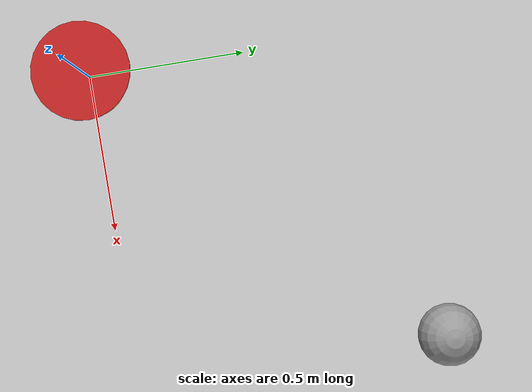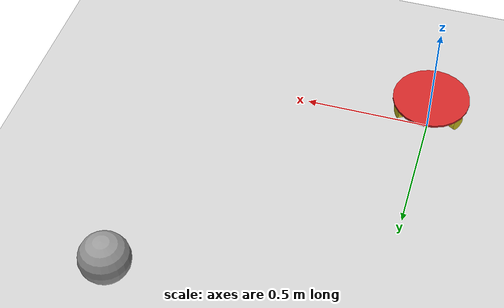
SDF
<?xml version="1.0" ?>
<sdf version="1.6">
  <world name="default">
    <plugin name="simulation_plugin" filename="libsimulation_plugin.so"/>
    <physics type='ode'>
      <max_step_size>0.001</max_step_size>
      <!-- Default is 0.001 , can go up to increase the simulation real time update rate  -->
      <real_time_factor>1.000000</real_time_factor>
      <real_time_update_rate>1000.000000</real_time_update_rate>
      <!-- Default is 1000 , can go up to increase the simulation real time update rate  -->
    </physics>
    <include>
      <uri>model://ground_plane</uri>
    </include>
    <include>
      <uri>model://sun</uri>
    </include>
    <include>
      <uri>model://omniROS</uri>
      <plugin name="torque_plugin" filename="libtorque_plugin.so"/>

      <pose> 0 0 0.10 0 0 3.1415 </pose>
    </include>
    <include>
      <uri>model://ball</uri>
      <!-- Useless because of modelstate message in gazebo-->
      <pose> 1 1 0.05 0 0 0 </pose>
    </include>
    <light name='sun' type='directional'>
      <cast_shadows>1</cast_shadows>
      <pose frame=''>0 0 10 0 -0 0</pose>
      <diffuse>0.8 0.8 0.8 1</diffuse>
      <specular>0.2 0.2 0.2 1</specular>
      <attenuation>
        <range>1000</range>
        <constant>0.9</constant>
        <linear>0.01</linear>
        <quadratic>0.001</quadratic>
      </attenuation>
      <direction>-0.5 0.1 -0.9</direction>
    </light>
    <scene>
      <ambient>1.0 1.0 1.0 1</ambient>
      <background>0.7 0.7 0.7 1</background>
      <shadows>1</shadows>
    </scene>
  </world>
</sdf>

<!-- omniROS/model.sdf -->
<sdf version='1.6'>
  <model name='omniROS'>
    <plugin name="holonomic_model_plugin" filename="libholonomic_model_plugin.so">
        <pid_p>0.1</pid_p>
        <pid_i>0.000</pid_i>
        <pid_d>0.0</pid_d>
        <pid_output_max>1.76</pid_output_max>
        <PIDfrequency>60</PIDfrequency>
    </plugin>

    <link name='base_link'>
      <pose frame=''>0 -0 0.0645 0 -0 0</pose>
      <inertial>
        <mass>2.7</mass>
        <inertia>
          <ixx>0.00011205</ixx>
          <ixy>0</ixy>
          <ixz>0</ixz>
          <iyy>0.00011205</iyy>
          <iyz>0</iyz>
          <izz>0.00022396</izz>
        </inertia>
        <pose frame=''>0 0 0 0 -0 0</pose>
      </inertial>
      <self_collide>0</self_collide>
      <kinematic>0</kinematic>
      <gravity>1</gravity>
      <visual name='visual'>
        <pose frame=''>0 0 0 0 -0 0</pose>
        <geometry>
          <cylinder>
            <radius>0.1525</radius>
            <length>0.009</length>
          </cylinder>
        </geometry>
        <material>
          <lighting>1</lighting>
          <script>
            <uri>file://media/materials/scripts/gazebo.material</uri>
            <name>Gazebo/Red</name>
          </script>
          <ambient>1.0 0.0 0.0 1</ambient>
          <diffuse>1.0 0.0 0.0 1</diffuse>
          <specular>0.01 0.01 0.01 1</specular>
          <emissive>0 0 0 1</emissive>
          <shader type='vertex'>
            <normal_map>__default__</normal_map>
          </shader>
        </material>
        <cast_shadows>1</cast_shadows>
        <transparency>0</transparency>
      </visual>
      <collision name='base_link_collision'>
        <max_contacts>10</max_contacts>
        <pose frame=''>0 0 0 0 -0 0</pose>
        <geometry>
          <cylinder>
            <radius>0.1525</radius>
            <length>0.009</length>
          </cylinder>
        </geometry>
      </collision>
      <sensor name="lidar" type="ray">
        <pose>0 0 0.033 0 -0 0</pose>
        <ray>
          <scan>
            <horizontal>
              <samples>360</samples>
              <resolution>1</resolution>
              <min_angle>0.0</min_angle>
              <max_angle>6.2831</max_angle>
            </horizontal>
          </scan>
          <range>
            <min>0.12</min>
            <max>10</max>
            <resolution>0.01</resolution>
          </range>
          <noise>
            <type>gaussian</type>
            <mean>0.0</mean>
            <stddev>0.05</stddev>
          </noise>
        </ray>
        <plugin name="laser" filename="libgazebo_ros_laser.so">
          <topicName>/omniROS/lidarScan</topicName>
          <frameName>hokuyo_link</frameName>
        </plugin>
        <always_on>1</always_on>
        <update_rate>7</update_rate>
        <visualize>false</visualize>
      </sensor>
    </link>
    <link name='Wheel1'>
      <pose frame=''>-0 0.13 0.029 1.5708 -0 0</pose>
      <inertial>
        <mass>0.065</mass>
        <inertia>
          <ixx>1.33e-06</ixx>
          <ixy>0</ixy>
          <ixz>0</ixz>
          <iyy>1.33e-06</iyy>
          <iyz>0</iyz>
          <izz>0.000027</izz>
        </inertia>
        <pose frame=''>0 0 0 0 -0 0</pose>
      </inertial>
      <self_collide>0</self_collide>
      <kinematic>0</kinematic>
      <gravity>1</gravity>
      <visual name='visual'>
        <pose frame=''>0 0 0 0 -0 0</pose>
        <geometry>
          <cylinder>
            <radius>0.029</radius>
            <length>0.026</length>
          </cylinder>
        </geometry>
        <material>
          <lighting>1</lighting>
          <script>
            <uri>file://media/materials/scripts/gazebo.material</uri>
            <name>Gazebo/Yellow</name>
          </script>
          <ambient>0.5 0.5 0.0 1</ambient>
          <diffuse>0.7 0.7 0.7 1</diffuse>
          <specular>0.01 0.01 0.01 1</specular>
          <emissive>0 0 0 1</emissive>
          <shader type='vertex'>
            <normal_map>__default__</normal_map>
          </shader>
        </material>
        <cast_shadows>1</cast_shadows>
        <transparency>0</transparency>
      </visual>
      <collision name='collision'>
        <max_contacts>1</max_contacts>
        <pose frame=''>0 0 0 0 -0 0</pose>
        <geometry>
          <cylinder>
            <radius>0.029</radius>
            <length>0.026</length>
          </cylinder>
        </geometry>
        <surface>
          <friction>
            <torsional>
              <coefficient>0.0</coefficient>
            </torsional>
            <ode>
              <fdir1>1 1 0</fdir1>
              <mu>50</mu>
              <mu2>0</mu2>
            </ode>
          </friction>
        </surface>
      </collision>
    </link>
    <link name='Wheel2'>
      <pose frame=''>-0.112583 -0.065 0.029 1.5708 -0 2.0944</pose>
      <inertial>
        <mass>0.065</mass>
        <inertia>
          <ixx>1.33e-06</ixx>
          <ixy>0</ixy>
          <ixz>0</ixz>
          <iyy>1.33e-06</iyy>
          <iyz>0</iyz>
          <izz>2.41e-06</izz>
        </inertia>
        <pose frame=''>0 0 0 0 -0 0</pose>
      </inertial>
      <self_collide>0</self_collide>
      <kinematic>0</kinematic>
      <gravity>1</gravity>
      <visual name='visual'>
        <pose frame=''>0 0 0 0 -0 0</pose>
        <geometry>
          <cylinder>
            <radius>0.029</radius>
            <length>0.026</length>
          </cylinder>
        </geometry>
        <material>
          <lighting>1</lighting>
          <script>
            <uri>file://media/materials/scripts/gazebo.material</uri>
            <name>Gazebo/Yellow</name>
          </script>
          <ambient>0.5 0.5 0.0 1</ambient>
          <diffuse>0.7 0.7 0.7 1</diffuse>
          <specular>0.01 0.01 0.01 1</specular>
          <emissive>0 0 0 1</emissive>
          <shader type='vertex'>
            <normal_map>__default__</normal_map>
          </shader>
        </material>
        <cast_shadows>1</cast_shadows>
        <transparency>0</transparency>
      </visual>
      <collision name='collision'>
        <max_contacts>1</max_contacts>
        <pose frame=''>0 0 0 0 -0 0</pose>
        <geometry>
          <cylinder>
            <radius>0.029</radius>
            <length>0.026</length>
          </cylinder>
        </geometry>
        <surface>
          <friction>
            <ode>
              <fdir1>1 1 0</fdir1>
              <mu>50</mu>
              <mu2>0</mu2>
            </ode>
          </friction>
        </surface>
      </collision>
    </link>
    <link name='Wheel3'>
      <pose frame=''>0.112583 -0.065 0.029 1.5708 0 -2.0944</pose>
      <inertial>
        <mass>0.065</mass>
        <inertia>
          <ixx>1.33e-06</ixx>
          <ixy>0</ixy>
          <ixz>0</ixz>
          <iyy>1.33e-06</iyy>
          <iyz>0</iyz>
          <izz>2.41e-06</izz>
        </inertia>
        <pose frame=''>0 0 0 0 -0 0</pose>
      </inertial>
      <self_collide>0</self_collide>
      <kinematic>0</kinematic>
      <gravity>1</gravity>
      <visual name='visual'>
        <pose frame=''>0 0 0 0 -0 0</pose>
        <geometry>
          <cylinder>
            <radius>0.029</radius>
            <length>0.026</length>
          </cylinder>
        </geometry>
        <material>
          <lighting>1</lighting>
          <script>
            <uri>file://media/materials/scripts/gazebo.material</uri>
            <name>Gazebo/Yellow</name>
          </script>
          <ambient>0.5 0.5 0.0 1</ambient>
          <diffuse>0.7 0.7 0.7 1</diffuse>
          <specular>0.01 0.01 0.01 1</specular>
          <emissive>0 0 0 1</emissive>
          <shader type='vertex'>
            <normal_map>__default__</normal_map>
          </shader>
        </material>
        <cast_shadows>1</cast_shadows>
        <transparency>0</transparency>
      </visual>
      <collision name='collision'>
        <max_contacts>1</max_contacts>
        <pose frame=''>0 0 0 0 -0 0</pose>
        <geometry>
          <cylinder>
            <radius>0.029</radius>
            <length>0.026</length>
          </cylinder>
        </geometry>
        <surface>
          <friction>
            <ode>
              <fdir1>1 1 0</fdir1>
              <mu>50</mu>
              <mu2>0</mu2>
            </ode>
          </friction>
        </surface>
      </collision>
    </link>
    <joint name='Rotation1' type='revolute'>
      <parent>base_link</parent>
      <child>Wheel1</child>
      <pose frame=''>0 0 0 0 -0 0</pose>
      <axis>
        <xyz>0 0 1</xyz>
        <use_parent_model_frame>0</use_parent_model_frame>
        <limit>
          <lower>-1.79769e+308</lower>
          <upper>1.79769e+308</upper>
          <effort>2</effort>
          <velocity>50</velocity>
        </limit>
        <dynamics>
          <spring_reference>0</spring_reference>
          <spring_stiffness>0</spring_stiffness>
          <damping>0</damping>
          <friction>0</friction>
        </dynamics>
      </axis>
      <physics>
        <provide_feedback>1</provide_feedback>
        <ode>
          <limit>
            <cfm>0</cfm>
            <erp>0.2</erp>
          </limit>
          <suspension>
            <cfm>0</cfm>
            <erp>0.2</erp>
          </suspension>
        </ode>
      </physics>
    </joint>
    <joint name='Rotation2' type='revolute'>
      <parent>base_link</parent>
      <child>Wheel2</child>
      <pose frame=''>0 0 0 0 -0 0</pose>
      <axis>
        <xyz>0 0 1</xyz>
        <use_parent_model_frame>0</use_parent_model_frame>
        <limit>
          <lower>-1.79769e+308</lower>
          <upper>1.79769e+308</upper>
          <effort>2</effort>
          <velocity>50</velocity>
        </limit>
        <dynamics>
          <spring_reference>0</spring_reference>
          <spring_stiffness>0</spring_stiffness>
          <damping>0</damping>
          <friction>0</friction>
        </dynamics>
      </axis>
      <physics>
        <provide_feedback>1</provide_feedback>
        <ode>
          <limit>
            <cfm>0</cfm>
            <erp>0.2</erp>
          </limit>
          <suspension>
            <cfm>0</cfm>
            <erp>0.2</erp>
          </suspension>
        </ode>
      </physics>
    </joint>
    <joint name='Rotation3' type='revolute'>
      <parent>base_link</parent>
      <child>Wheel3</child>
      <pose frame=''>0 0 0 0 -0 0</pose>
      <axis>
        <xyz>0 0 1</xyz>
        <use_parent_model_frame>0</use_parent_model_frame>
        <limit>
          <lower>-1.79769e+308</lower>
          <upper>1.79769e+308</upper>
          <effort>2</effort>
          <velocity>50</velocity>
        </limit>
        <dynamics>
          <spring_reference>0</spring_reference>
          <spring_stiffness>0</spring_stiffness>
          <damping>0</damping>
          <friction>0</friction>
        </dynamics>
      </axis>
      <physics>
        <provide_feedback>1</provide_feedback>
        <ode>
          <limit>
            <cfm>0</cfm>
            <erp>0.2</erp>
          </limit>
          <suspension>
            <cfm>0</cfm>
            <erp>0.2</erp>
          </suspension>
        </ode>
      </physics>
    </joint>
    <static>0</static>
    <allow_auto_disable>1</allow_auto_disable>
  </model>
</sdf>

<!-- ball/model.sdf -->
<sdf version='1.6'>
  <model name='ball'>
    <link name='link_0'>
      <pose frame=''>-0 0 0 0 -0 0</pose>
      <inertial>
        <mass>0.08</mass>
        <inertia>
          <ixx>0.008</ixx>
          <ixy>0</ixy>
          <ixz>0</ixz>
          <iyy>0.008</iyy>
          <iyz>0</iyz>
          <izz>0.008</izz>
        </inertia>
        <pose frame=''>0 0 0 0 -0 0</pose>
      </inertial>
      <gravity>1</gravity>
      <self_collide>0</self_collide>
      <kinematic>0</kinematic>
      <visual name='visual'>
        <pose frame=''>0 0 0 0 -0 0</pose>
        <geometry>
          <sphere>
            <radius>0.1</radius>
          </sphere>
        </geometry>
        <material>
          <lighting>1</lighting>
          <script>
            <uri>file://media/materials/scripts/gazebo.material</uri>
            <name>Gazebo/Grey</name>
          </script>
          <ambient>0.3 0.3 0.3 1</ambient>
          <diffuse>0.7 0.7 0.7 1</diffuse>
          <specular>0.01 0.01 0.01 1</specular>
          <emissive>0 0 0 1</emissive>
          <shader type='vertex'>
            <normal_map>__default__</normal_map>
          </shader>
        </material>
        <cast_shadows>1</cast_shadows>
        <transparency>0</transparency>
      </visual>
      <collision name='collision'>
        <laser_retro>0</laser_retro>
        <max_contacts>10</max_contacts>
        <pose frame=''>0 0 0 0 -0 0</pose>
        <geometry>
          <sphere>
            <radius>0.1</radius>
          </sphere>
        </geometry>
        <surface>
          <friction>
            <ode>
              <mu>0.65</mu>
              <mu2>0.65</mu2>
              <fdir1>0 0 0</fdir1>
              <slip1>0</slip1>
              <slip2>0</slip2>
            </ode>
            <torsional>
              <coefficient>1</coefficient>
              <patch_radius>0</patch_radius>
              <surface_radius>0</surface_radius>
              <use_patch_radius>1</use_patch_radius>
              <ode>
                <slip>0</slip>
              </ode>
            </torsional>
          </friction>
          <bounce>
            <restitution_coefficient>0.5</restitution_coefficient>
            <threshold>1</threshold>
            <!-- default is 1e+06 -->
          </bounce>
          <contact>
            <collide_without_contact>0</collide_without_contact>
            <collide_without_contact_bitmask>1</collide_without_contact_bitmask>
            <collide_bitmask>1</collide_bitmask>
            <ode>
              <soft_cfm>0</soft_cfm>
              <soft_erp>0.2</soft_erp>
              <kp>1e+13</kp>
              <kd>1</kd>
              <max_vel>0.01</max_vel>
              <min_depth>0</min_depth>
            </ode>
            <bullet>
              <split_impulse>1</split_impulse>
              <split_impulse_penetration_threshold>-0.01</split_impulse_penetration_threshold>
              <soft_cfm>0</soft_cfm>
              <soft_erp>0.2</soft_erp>
              <kp>1e+13</kp>
              <kd>1</kd>
            </bullet>
          </contact>
        </surface>
      </collision>
    </link>
    <static>0</static>
    <allow_auto_disable>1</allow_auto_disable>
  </model>
</sdf>
